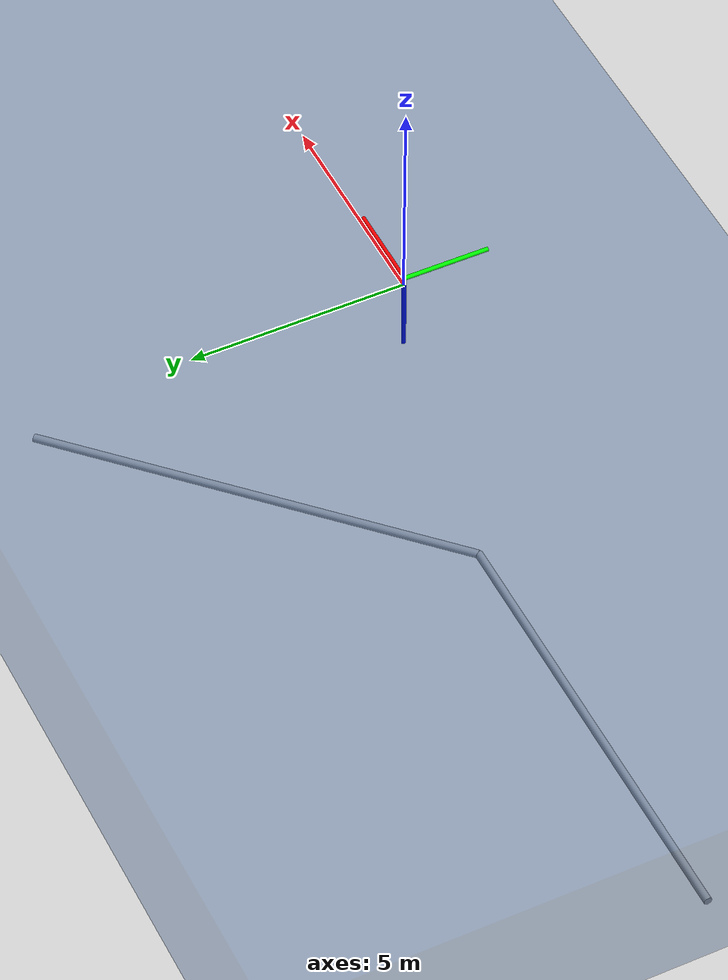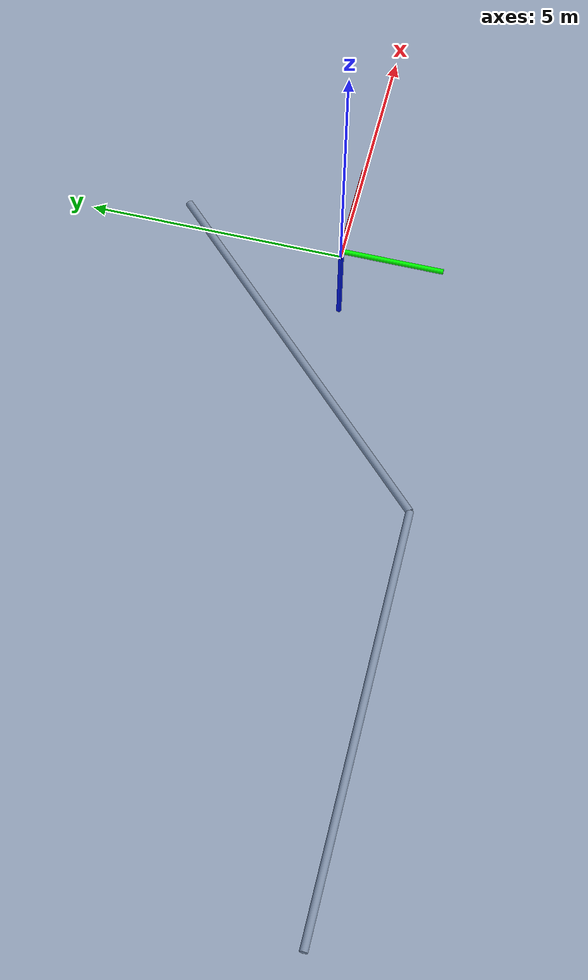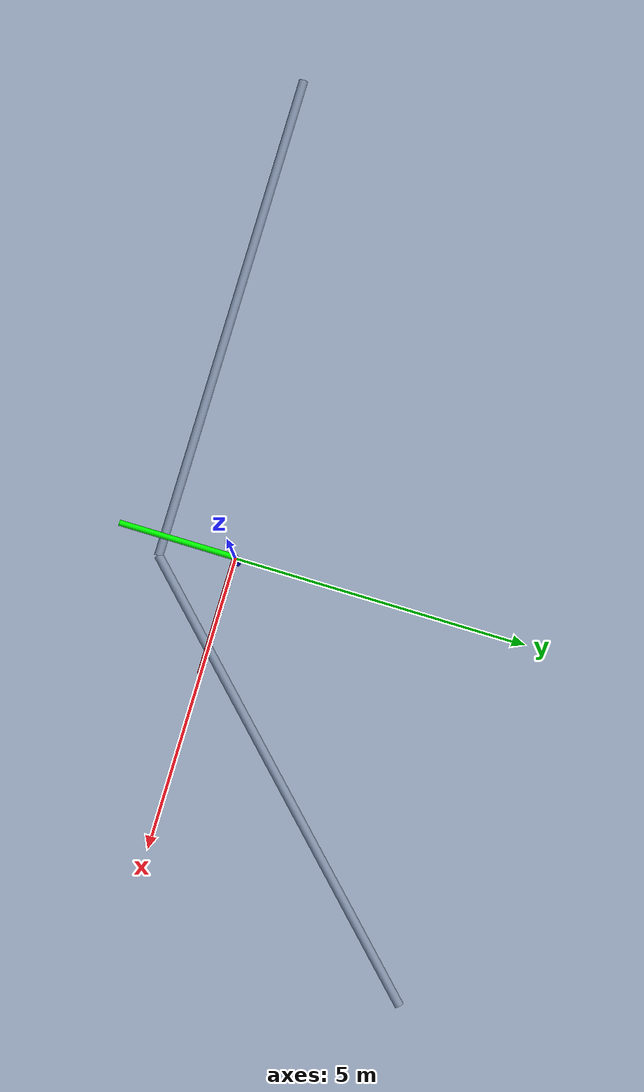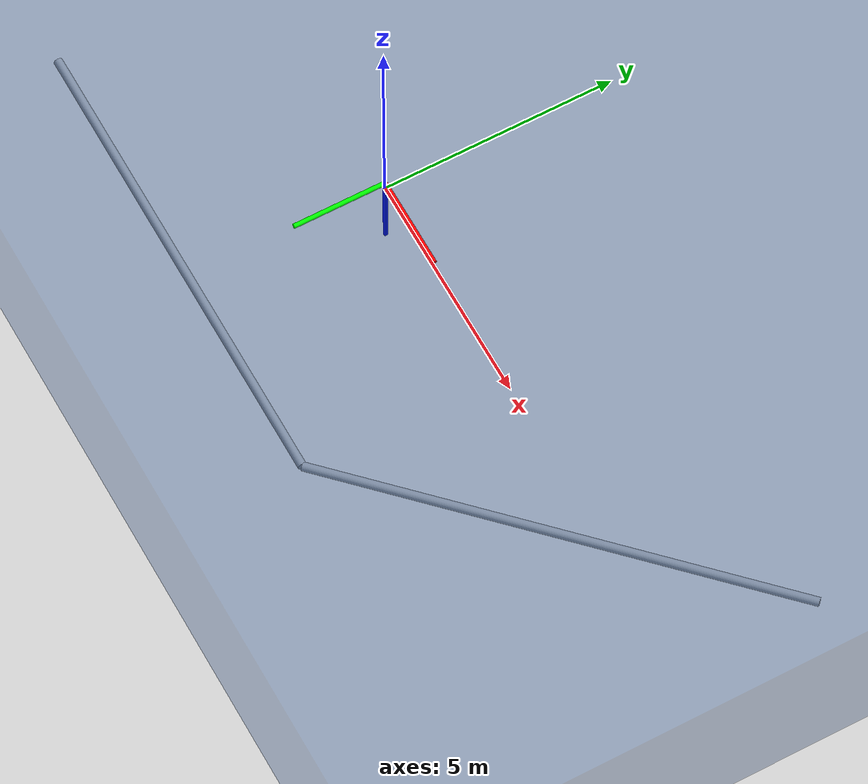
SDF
<sdf version="1.6">
 <world name="sand">
  <plugin filename="gz-sim-physics-system" name="gz::sim::systems::Physics"/>
  <plugin filename="gz-sim-user-commands-system" name="gz::sim::systems::UserCommands"/>
  <plugin filename="gz-sim-scene-broadcaster-system" name="gz::sim::systems::SceneBroadcaster"/>
  <plugin filename="gz-sim-sensors-system" name="gz::sim::systems::Sensors"/>
  <plugin filename="libgz-sim-imu-system.so" name="gz::sim::systems::Imu"/>
  <plugin filename="gz-sim-buoyancy-system" name="gz::sim::systems::Buoyancy">
   <graded_buoyancy>
    <default_density>1000</default_density>
    <density_change><above_depth>0</above_depth><density>1</density></density_change>
   </graded_buoyancy>
   <enable>orca4</enable>
  </plugin>
  <include><uri>https://fuel.gazebosim.org/1.0/OpenRobotics/models/Sun</uri></include>
  <include><uri>model://axes</uri><pose>0 0 0.2 3.14159265 0 0</pose></include>
  <model name="water">
   <static>true</static>
   <link name="water_link">
    <pose>0 0 -2 0 0 0</pose>
    <visual name="water_visual">
     <geometry><box><size>100 100 4</size></box></geometry>
     <material>
      <ambient>0 0.2 0.5 0.3</ambient>
      <diffuse>0 0.2 0.5 0.3</diffuse>
      <specular>0 0.2 0.5 0.1</specular>
     </material>
    </visual>
   </link>
  </model>
  <model name="pipe">
   <static>true</static>
   <pose>0 -2 -9.9 0 0 0</pose>
   <link name="pipe_part1">
    <pose>-5.5 0 0 0 1.5708 0</pose>
    <collision name="collision1">
     <geometry><cylinder><radius>0.1</radius><length>11.0</length></cylinder></geometry>
    </collision>
    <visual name="visual1">
     <geometry><cylinder><radius>0.1</radius><length>11.0</length></cylinder></geometry>
    </visual>
   </link>
   <link name="pipe_part2">
    <pose>3.889 3.889 0 0 1.5708 0.7854</pose>
    <collision name="collision2">
     <geometry><cylinder><radius>0.1</radius><length>11.0</length></cylinder></geometry>
    </collision>
    <visual name="visual2">
     <geometry><cylinder><radius>0.1</radius><length>11.0</length></cylinder></geometry>
    </visual>
   </link>
  </model>
 </world>
</sdf>

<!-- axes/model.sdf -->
<sdf version='1.6'>
  <model name='axes'>
    <static>true</static>
    <pose>0 0 0 0 0 0</pose>

    <link name="x_axis">
      <visual name="x_visual">
        <pose degrees="true">1 0 0 90 0 90</pose>
        <geometry>
          <cylinder>
            <radius>0.05</radius>
            <length>2</length>
          </cylinder>
        </geometry>
        <material>
          <ambient>1 0 0 1</ambient>
          <diffuse>1 0 0 1</diffuse>
          <specular>1 0 0 1</specular>
        </material>
      </visual>
    </link>

    <link name="y_axis">
      <visual name="y_visual">
        <pose degrees="true">0 1 0 0 90 90</pose>
        <geometry>
          <cylinder>
            <radius>0.05</radius>
            <length>2</length>
          </cylinder>
        </geometry>
        <material>
          <ambient>0 1 0 1</ambient>
          <diffuse>0 1 0 1</diffuse>
          <specular>0 1 0 1</specular>
        </material>
      </visual>
    </link>

    <link name="z_axis">
      <visual name="z_visual">
        <pose degrees="true">0 0 1 0 0 0</pose>
        <geometry>
          <cylinder>
            <radius>0.05</radius>
            <length>2</length>
          </cylinder>
        </geometry>
        <material>
          <ambient>0 0 1 1</ambient>
          <diffuse>0 0 1 1</diffuse>
          <specular>0 0 1 1</specular>
        </material>
      </visual>
    </link>

  </model>
</sdf>
